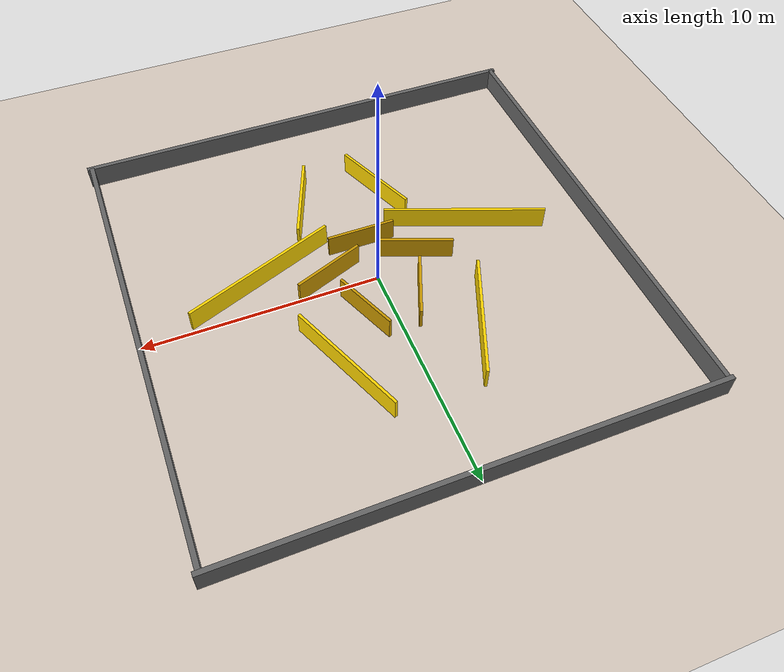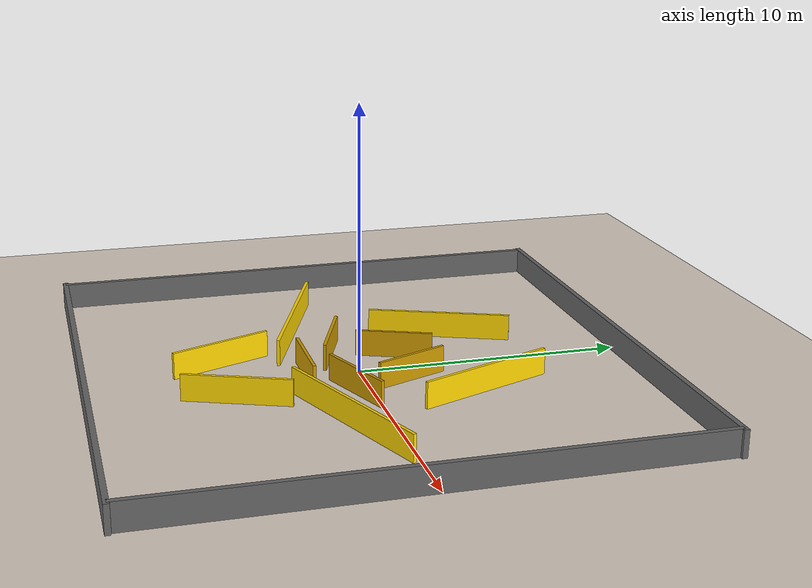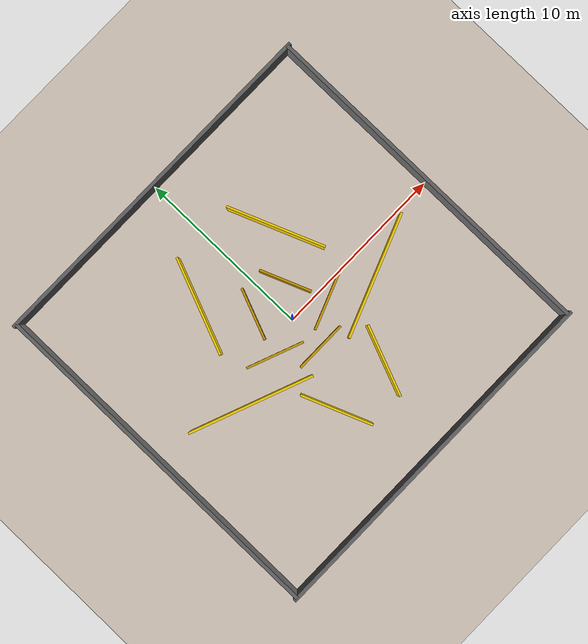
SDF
<?xml version="1.0" ?>
<!-- WORLD: Star — 5-pointed star shape from angled walls -->
<sdf version="1.6">
  <world name="default">
    <physics name="1ms" type="ignored"><max_step_size>0.001</max_step_size><real_time_factor>1.0</real_time_factor></physics>
    <plugin filename="libignition-gazebo-physics-system.so" name="ignition::gazebo::systems::Physics"/>
    <plugin filename="libignition-gazebo-user-commands-system.so" name="ignition::gazebo::systems::UserCommands"/>
    <plugin filename="libignition-gazebo-scene-broadcaster-system.so" name="ignition::gazebo::systems::SceneBroadcaster"/>
    <light type="directional" name="sun"><cast_shadows>true</cast_shadows><pose>0 0 10 0 0 0</pose><diffuse>0.85 0.85 0.85 1</diffuse><specular>0.2 0.2 0.2 1</specular><attenuation><range>1000</range><constant>0.9</constant><linear>0.01</linear><quadratic>0.001</quadratic></attenuation><direction>-0.5 0.1 -0.9</direction></light>
    <model name="ground"><static>true</static><link name="l"><collision name="c"><geometry><plane><normal>0 0 1</normal><size>100 100</size></plane></geometry></collision><visual name="v"><geometry><plane><normal>0 0 1</normal><size>100 100</size></plane></geometry><material><ambient>0.85 0.8 0.75 1</ambient><diffuse>0.85 0.8 0.75 1</diffuse></material></visual></link></model>
    <model name="wn"><static>true</static><pose>0 10 0.5 0 0 0</pose><link name="l"><collision name="c"><geometry><box><size>20.4 0.2 1</size></box></geometry></collision><visual name="v"><geometry><box><size>20.4 0.2 1</size></box></geometry><material><ambient>0.4 0.4 0.4 1</ambient><diffuse>0.4 0.4 0.4 1</diffuse></material></visual></link></model>
    <model name="ws"><static>true</static><pose>0 -10 0.5 0 0 0</pose><link name="l"><collision name="c"><geometry><box><size>20.4 0.2 1</size></box></geometry></collision><visual name="v"><geometry><box><size>20.4 0.2 1</size></box></geometry><material><ambient>0.4 0.4 0.4 1</ambient><diffuse>0.4 0.4 0.4 1</diffuse></material></visual></link></model>
    <model name="we"><static>true</static><pose>10 0 0.5 0 0 0</pose><link name="l"><collision name="c"><geometry><box><size>0.2 20 1</size></box></geometry></collision><visual name="v"><geometry><box><size>0.2 20 1</size></box></geometry><material><ambient>0.4 0.4 0.4 1</ambient><diffuse>0.4 0.4 0.4 1</diffuse></material></visual></link></model>
    <model name="ww"><static>true</static><pose>-10 0 0.5 0 0 0</pose><link name="l"><collision name="c"><geometry><box><size>0.2 20 1</size></box></geometry></collision><visual name="v"><geometry><box><size>0.2 20 1</size></box></geometry><material><ambient>0.4 0.4 0.4 1</ambient><diffuse>0.4 0.4 0.4 1</diffuse></material></visual></link></model>

    <!-- Outer edges (gold) -->
    <model name="s1"><static>true</static><pose>2.85 3.93 0.5 0 0 -1.19</pose><link name="l"><collision name="c"><geometry><box><size>5.5 0.12 1</size></box></geometry></collision><visual name="v"><geometry><box><size>5.5 0.12 1</size></box></geometry><material><ambient>1.0 0.84 0.0 1</ambient><diffuse>1.0 0.84 0.0 1</diffuse></material></visual></link></model>
    <model name="s2"><static>true</static><pose>4.6 -1.5 0.5 0 0 0.37</pose><link name="l"><collision name="c"><geometry><box><size>7.0 0.12 1</size></box></geometry></collision><visual name="v"><geometry><box><size>7.0 0.12 1</size></box></geometry><material><ambient>1.0 0.84 0.0 1</ambient><diffuse>1.0 0.84 0.0 1</diffuse></material></visual></link></model>
    <model name="s3"><static>true</static><pose>1.75 -4.85 0.5 0 0 -1.95</pose><link name="l"><collision name="c"><geometry><box><size>4.0 0.12 1</size></box></geometry></collision><visual name="v"><geometry><box><size>4.0 0.12 1</size></box></geometry><material><ambient>1.0 0.84 0.0 1</ambient><diffuse>1.0 0.84 0.0 1</diffuse></material></visual></link></model>
    <model name="s4"><static>true</static><pose>-1.75 -4.85 0.5 0 0 1.95</pose><link name="l"><collision name="c"><geometry><box><size>4.0 0.12 1</size></box></geometry></collision><visual name="v"><geometry><box><size>4.0 0.12 1</size></box></geometry><material><ambient>1.0 0.84 0.0 1</ambient><diffuse>1.0 0.84 0.0 1</diffuse></material></visual></link></model>
    <model name="s5"><static>true</static><pose>-4.6 -1.5 0.5 0 0 -0.37</pose><link name="l"><collision name="c"><geometry><box><size>7.0 0.12 1</size></box></geometry></collision><visual name="v"><geometry><box><size>7.0 0.12 1</size></box></geometry><material><ambient>1.0 0.84 0.0 1</ambient><diffuse>1.0 0.84 0.0 1</diffuse></material></visual></link></model>
    <model name="s6"><static>true</static><pose>-2.85 3.93 0.5 0 0 1.19</pose><link name="l"><collision name="c"><geometry><box><size>5.5 0.12 1</size></box></geometry></collision><visual name="v"><geometry><box><size>5.5 0.12 1</size></box></geometry><material><ambient>1.0 0.84 0.0 1</ambient><diffuse>1.0 0.84 0.0 1</diffuse></material></visual></link></model>
    <!-- Inner pentagon edges (darker gold) -->
    <model name="p1"><static>true</static><pose>1.19 1.64 0.5 0 0 -1.19</pose><link name="l"><collision name="c"><geometry><box><size>2.9 0.12 1</size></box></geometry></collision><visual name="v"><geometry><box><size>2.9 0.12 1</size></box></geometry><material><ambient>0.8 0.6 0.0 1</ambient><diffuse>0.8 0.6 0.0 1</diffuse></material></visual></link></model>
    <model name="p2"><static>true</static><pose>1.93 -0.63 0.5 0 0 0.37</pose><link name="l"><collision name="c"><geometry><box><size>3.2 0.12 1</size></box></geometry></collision><visual name="v"><geometry><box><size>3.2 0.12 1</size></box></geometry><material><ambient>0.8 0.6 0.0 1</ambient><diffuse>0.8 0.6 0.0 1</diffuse></material></visual></link></model>
    <model name="p3"><static>true</static><pose>0 -2.02 0.5 0 0 0</pose><link name="l"><collision name="c"><geometry><box><size>2.94 0.12 1</size></box></geometry></collision><visual name="v"><geometry><box><size>2.94 0.12 1</size></box></geometry><material><ambient>0.8 0.6 0.0 1</ambient><diffuse>0.8 0.6 0.0 1</diffuse></material></visual></link></model>
    <model name="p4"><static>true</static><pose>-1.93 -0.63 0.5 0 0 -0.37</pose><link name="l"><collision name="c"><geometry><box><size>3.2 0.12 1</size></box></geometry></collision><visual name="v"><geometry><box><size>3.2 0.12 1</size></box></geometry><material><ambient>0.8 0.6 0.0 1</ambient><diffuse>0.8 0.6 0.0 1</diffuse></material></visual></link></model>
    <model name="p5"><static>true</static><pose>-1.19 1.64 0.5 0 0 1.19</pose><link name="l"><collision name="c"><geometry><box><size>2.9 0.12 1</size></box></geometry></collision><visual name="v"><geometry><box><size>2.9 0.12 1</size></box></geometry><material><ambient>0.8 0.6 0.0 1</ambient><diffuse>0.8 0.6 0.0 1</diffuse></material></visual></link></model>
  </world>
</sdf>
